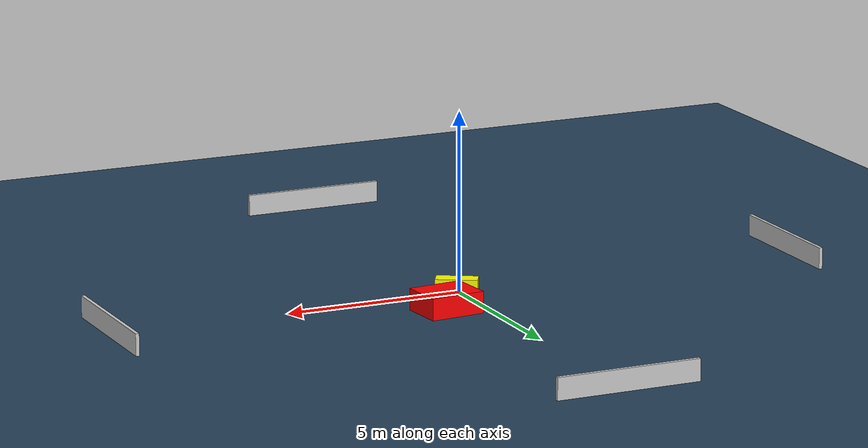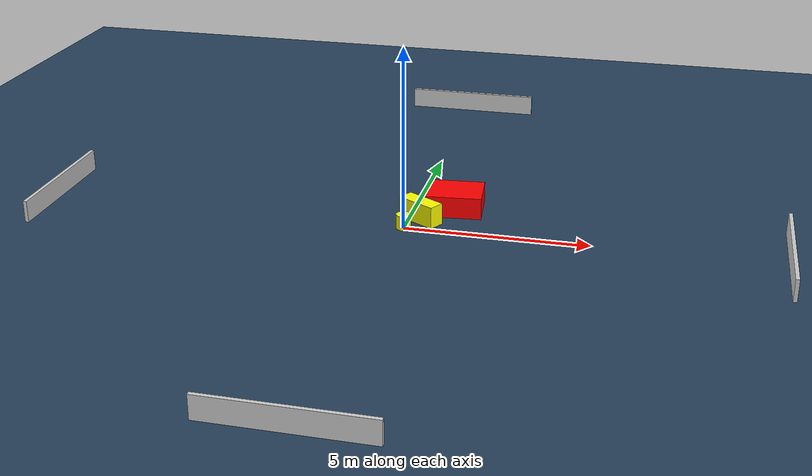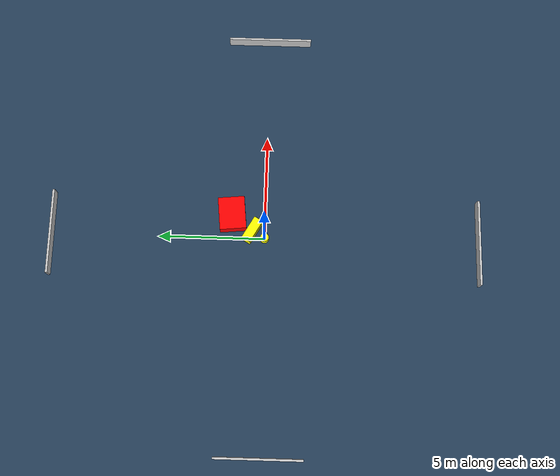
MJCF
<?xml version="1.0" ?>
<mujoco model="generated_environment">
  <option timestep="0.01" integrator="RK4" cone="elliptic"/>
  <default>
    <geom density="1"/>
  </default>
  <asset>
    <texture builtin="gradient" height="3072" name="skybox" rgb1="0.3 0.5 0.7" rgb2="0 0 0" type="skybox" width="512"/>
    <texture builtin="checker" height="300" name="groundplane" rgb1="0.2 0.3 0.4" rgb2="0.1 0.2 0.3" type="2d" width="300"/>
    <material name="groundplane" reflectance="0.2" texrepeat="5 5" texture="groundplane"/>
  </asset>
  <worldbody>
    <light dir="0 0 -1" directional="true" pos="0 0 1.5"/>
    <geom condim="3" friction="0.5 0.005 0.001" material="groundplane" name="floor" pos="0 0 0" size="0 0 0.05" type="plane"/>
    <body name="walls">
      <geom name="wall_1" condim="4" pos="-10.0 0.0 0.3" rgba="0.800000011920929 0.800000011920929 0.800000011920929 1.0" size="0.05 2.0 0.3" type="box"/>
      <geom name="wall_2" condim="4" pos="10.0 0.0 0.3" rgba="0.800000011920929 0.800000011920929 0.800000011920929 1.0" size="0.05 2.0 0.3" type="box"/>
      <geom name="wall_3" condim="4" pos="0.0 -10.0 0.3" rgba="0.800000011920929 0.800000011920929 0.800000011920929 1.0" size="2.0 0.05 0.3" type="box"/>
      <geom name="wall_4" condim="4" pos="0.0 10.0 0.3" rgba="0.800000011920929 0.800000011920929 0.800000011920929 1.0" size="2.0 0.05 0.3" type="box"/>
    </body>
    <body name="robot">
      <joint name="joint_x" type="slide" pos="0 0 0" axis="1 0 0"/>
      <joint name="joint_y" type="slide" pos="0 0 0" axis="0 1 0"/>
      <geom name="robot" type="cylinder" pos="0.0 0.0 0.2" size="0.2 0.2 0.0" mass="5.0" friction="1.0 0.005 0.0001" condim="4" rgba="1.0 1.0 0.0 1.0"/>
    </body>
    <body name="obstacle_1_movable">
      <geom name="obstacle_1_movable" condim="4" pos="0.3383693398355107 0.5836817799484411 0.3" euler="0 0 150.1666400747828" friction="0.0 0.005 0.001" rgba="1.0 1.0 0.0 1.0" size="0.5728843225788178 0.2220681582348212 0.3" type="box" mass="0.1"/>
      <joint type="free"/>
    </body>
    <body name="obstacle_2_static">
      <geom name="obstacle_2_static" condim="4" pos="1.0931720485695684 1.55146455548342 0.3" euler="0 0 185.52393056299871" friction="0.0 0.005 0.001" rgba="1.0 0.0 0.0 1.0" size="0.7670098257021172 0.6192365405584561 0.3" type="box"/>
    </body>
  </worldbody>
  <actuator>
    <motor name="actuator_x" joint="joint_x" gear="1" ctrlrange="-1 1"/>
    <motor name="actuator_y" joint="joint_y" gear="1" ctrlrange="-1 1"/>
  </actuator>
</mujoco>
